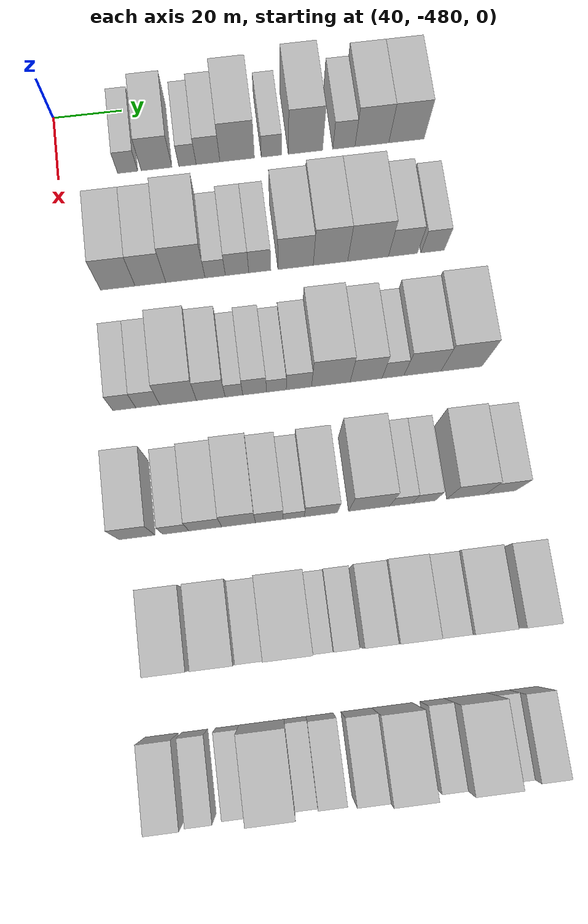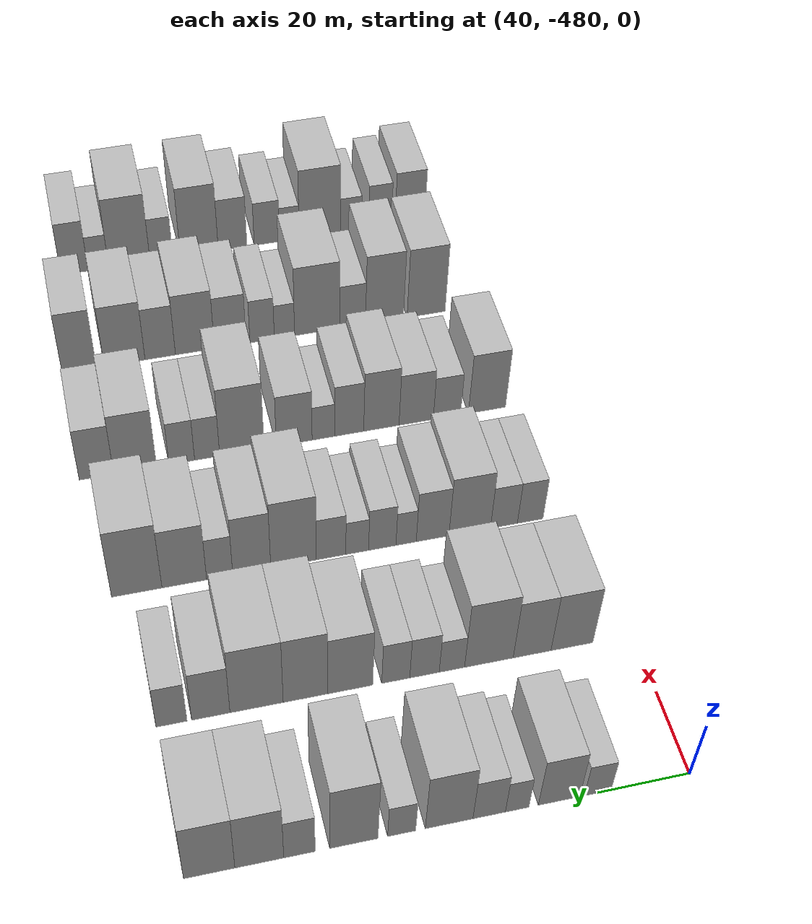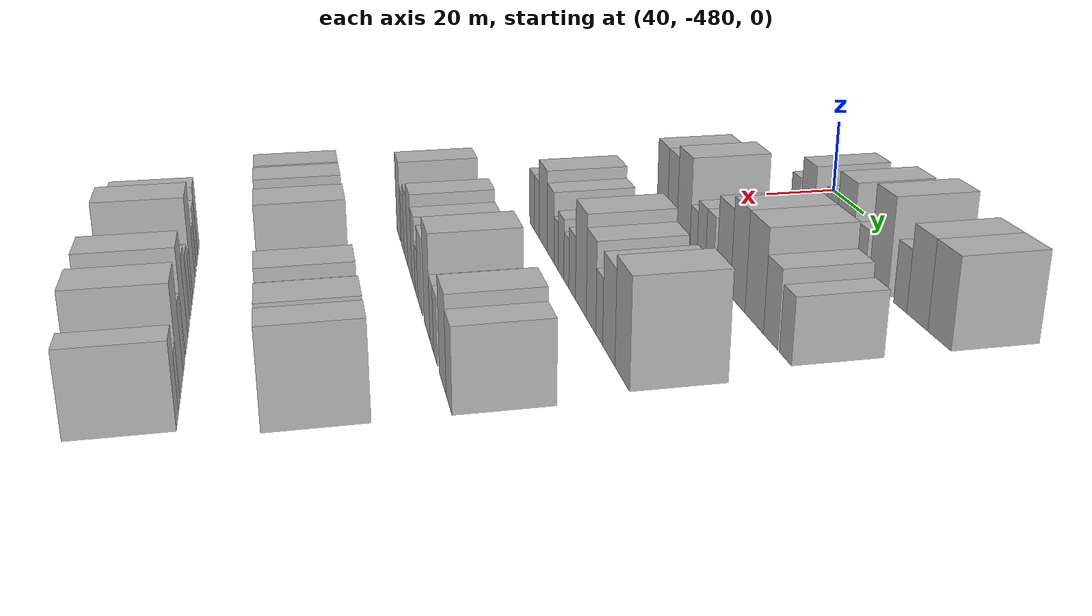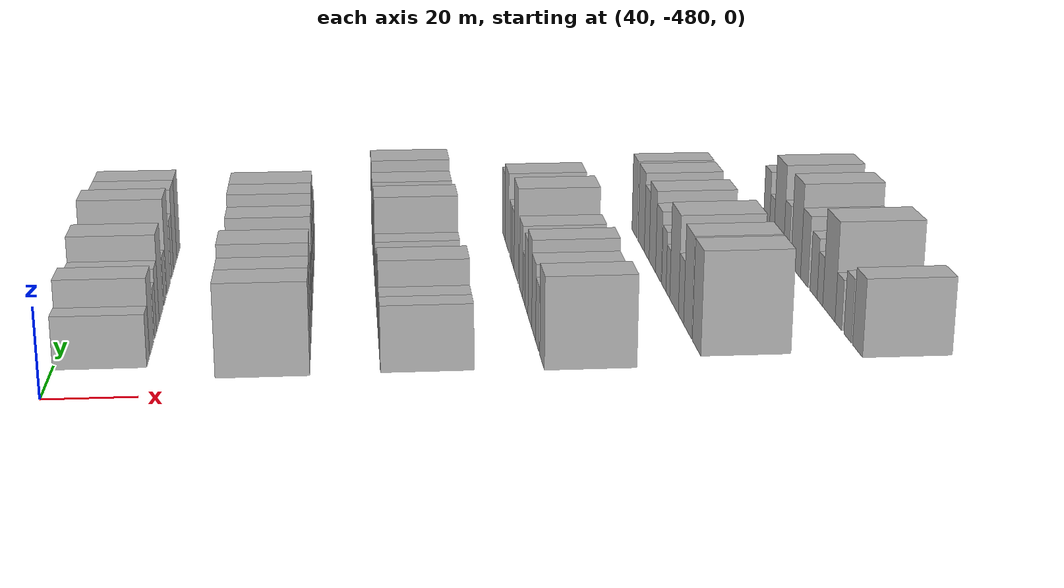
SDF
<sdf version="1.6">
 <world name="default">
  <model name="building_11">
   <static>1</static>
   <pose>50.0000 -459.8675 0 0.000000 0.000000 0.000000</pose>
   <link name="link">
    <pose>0 0 6.00 0 0 0</pose>
    <collision name="collision"><geometry><box><size>20.0000 5.8221 12.0000</size></box></geometry></collision>
    <visual name="visual">
     <cast_shadows>0</cast_shadows>
     <geometry><box><size>20.0000 5.8221 12.0000</size></box></geometry>
     <material>
      <script>
       <uri>model://HANNAS_wall/materials/scripts</uri>
       <uri>model://HANNAS_wall/materials/textures</uri>
       <name>vrc/HANNAS_wall</name>
      </script>
     </material>
    </visual>
   </link>
  </model>
  <model name="building_12">
   <static>1</static>
   <pose>50.0000 -451.4978 0 0.000000 0.000000 0.000000</pose>
   <link name="link">
    <pose>0 0 9.00 0 0 0</pose>
    <collision name="collision"><geometry><box><size>20.0000 8.9171 18.0000</size></box></geometry></collision>
    <visual name="visual">
     <cast_shadows>0</cast_shadows>
     <geometry><box><size>20.0000 8.9171 18.0000</size></box></geometry>
     <material>
      <script>
       <uri>model://HANNAS_wall/materials/scripts</uri>
       <uri>model://HANNAS_wall/materials/textures</uri>
       <name>vrc/HANNAS_wall</name>
      </script>
     </material>
    </visual>
   </link>
  </model>
  <model name="building_13">
   <static>1</static>
   <pose>50.0000 -442.5246 0 0.000000 0.000000 0.000000</pose>
   <link name="link">
    <pose>0 0 6.00 0 0 0</pose>
    <collision name="collision"><geometry><box><size>20.0000 5.0293 12.0000</size></box></geometry></collision>
    <visual name="visual">
     <cast_shadows>0</cast_shadows>
     <geometry><box><size>20.0000 5.0293 12.0000</size></box></geometry>
     <material>
      <script>
       <uri>model://HANNAS_wall/materials/scripts</uri>
       <uri>model://HANNAS_wall/materials/textures</uri>
       <name>vrc/HANNAS_wall</name>
      </script>
     </material>
    </visual>
   </link>
  </model>
  <model name="building_14">
   <static>1</static>
   <pose>50.0000 -436.5586 0 0.000000 0.000000 0.000000</pose>
   <link name="link">
    <pose>0 0 7.50 0 0 0</pose>
    <collision name="collision"><geometry><box><size>20.0000 6.9027 15.0000</size></box></geometry></collision>
    <visual name="visual">
     <cast_shadows>0</cast_shadows>
     <geometry><box><size>20.0000 6.9027 15.0000</size></box></geometry>
     <material>
      <script>
       <uri>model://HANNAS_wall/materials/scripts</uri>
       <uri>model://HANNAS_wall/materials/textures</uri>
       <name>vrc/HANNAS_wall</name>
      </script>
     </material>
    </visual>
   </link>
  </model>
  <model name="building_15">
   <static>1</static>
   <pose>50.0000 -428.0782 0 0.000000 0.000000 0.000000</pose>
   <link name="link">
    <pose>0 0 10.50 0 0 0</pose>
    <collision name="collision"><geometry><box><size>20.0000 10.0581 21.0000</size></box></geometry></collision>
    <visual name="visual">
     <cast_shadows>0</cast_shadows>
     <geometry><box><size>20.0000 10.0581 21.0000</size></box></geometry>
     <material>
      <script>
       <uri>model://HANNAS_wall/materials/scripts</uri>
       <uri>model://HANNAS_wall/materials/textures</uri>
       <name>vrc/HANNAS_wall</name>
      </script>
     </material>
    </visual>
   </link>
  </model>
  <model name="building_16">
   <static>1</static>
   <pose>50.0000 -418.1078 0 0.000000 0.000000 0.000000</pose>
   <link name="link">
    <pose>0 0 6.00 0 0 0</pose>
    <collision name="collision"><geometry><box><size>20.0000 5.8827 12.0000</size></box></geometry></collision>
    <visual name="visual">
     <cast_shadows>0</cast_shadows>
     <geometry><box><size>20.0000 5.8827 12.0000</size></box></geometry>
     <material>
      <script>
       <uri>model://HANNAS_wall/materials/scripts</uri>
       <uri>model://HANNAS_wall/materials/textures</uri>
       <name>vrc/HANNAS_wall</name>
      </script>
     </material>
    </visual>
   </link>
  </model>
  <model name="building_17">
   <static>1</static>
   <pose>50.0000 -408.1491 0 0.000000 0.000000 0.000000</pose>
   <link name="link">
    <pose>0 0 12.00 0 0 0</pose>
    <collision name="collision"><geometry><box><size>20.0000 10.0346 24.0000</size></box></geometry></collision>
    <visual name="visual">
     <cast_shadows>0</cast_shadows>
     <geometry><box><size>20.0000 10.0346 24.0000</size></box></geometry>
     <material>
      <script>
       <uri>model://HANNAS_wall/materials/scripts</uri>
       <uri>model://HANNAS_wall/materials/textures</uri>
       <name>vrc/HANNAS_wall</name>
      </script>
     </material>
    </visual>
   </link>
  </model>
  <model name="building_18">
   <static>1</static>
   <pose>50.0000 -396.9003 0 0.000000 0.000000 0.000000</pose>
   <link name="link">
    <pose>0 0 7.50 0 0 0</pose>
    <collision name="collision"><geometry><box><size>20.0000 6.4631 15.0000</size></box></geometry></collision>
    <visual name="visual">
     <cast_shadows>0</cast_shadows>
     <geometry><box><size>20.0000 6.4631 15.0000</size></box></geometry>
     <material>
      <script>
       <uri>model://HANNAS_wall/materials/scripts</uri>
       <uri>model://HANNAS_wall/materials/textures</uri>
       <name>vrc/HANNAS_wall</name>
      </script>
     </material>
    </visual>
   </link>
  </model>
  <model name="building_19">
   <static>1</static>
   <pose>50.0000 -388.6890 0 0.000000 0.000000 0.000000</pose>
   <link name="link">
    <pose>0 0 10.50 0 0 0</pose>
    <collision name="collision"><geometry><box><size>20.0000 9.9597 21.0000</size></box></geometry></collision>
    <visual name="visual">
     <cast_shadows>0</cast_shadows>
     <geometry><box><size>20.0000 9.9597 21.0000</size></box></geometry>
     <material>
      <script>
       <uri>model://HANNAS_wall/materials/scripts</uri>
       <uri>model://HANNAS_wall/materials/textures</uri>
       <name>vrc/HANNAS_wall</name>
      </script>
     </material>
    </visual>
   </link>
  </model>
  <model name="building_20">
   <static>1</static>
   <pose>50.0000 -378.5074 0 0.000000 0.000000 0.000000</pose>
   <link name="link">
    <pose>0 0 10.50 0 0 0</pose>
    <collision name="collision"><geometry><box><size>20.0000 10.4034 21.0000</size></box></geometry></collision>
    <visual name="visual">
     <cast_shadows>0</cast_shadows>
     <geometry><box><size>20.0000 10.4034 21.0000</size></box></geometry>
     <material>
      <script>
       <uri>model://HANNAS_wall/materials/scripts</uri>
       <uri>model://HANNAS_wall/materials/textures</uri>
       <name>vrc/HANNAS_wall</name>
      </script>
     </material>
    </visual>
   </link>
  </model>
  <model name="building_140">
   <static>1</static>
   <pose>85.0000 -465.6305 0 0.000000 0.000000 0.000000</pose>
   <link name="link">
    <pose>0 0 10.50 0 0 0</pose>
    <collision name="collision"><geometry><box><size>20.0000 9.6825 21.0000</size></box></geometry></collision>
    <visual name="visual">
     <cast_shadows>0</cast_shadows>
     <geometry><box><size>20.0000 9.6825 21.0000</size></box></geometry>
     <material>
      <script>
       <uri>model://HANNAS_wall/materials/scripts</uri>
       <uri>model://HANNAS_wall/materials/textures</uri>
       <name>vrc/HANNAS_wall</name>
      </script>
     </material>
    </visual>
   </link>
  </model>
  <model name="building_141">
   <static>1</static>
   <pose>85.0000 -456.4666 0 0.000000 0.000000 0.000000</pose>
   <link name="link">
    <pose>0 0 10.50 0 0 0</pose>
    <collision name="collision"><geometry><box><size>20.0000 8.6454 21.0000</size></box></geometry></collision>
    <visual name="visual">
     <cast_shadows>0</cast_shadows>
     <geometry><box><size>20.0000 8.6454 21.0000</size></box></geometry>
     <material>
      <script>
       <uri>model://HANNAS_wall/materials/scripts</uri>
       <uri>model://HANNAS_wall/materials/textures</uri>
       <name>vrc/HANNAS_wall</name>
      </script>
     </material>
    </visual>
   </link>
  </model>
  <model name="building_142">
   <static>1</static>
   <pose>85.0000 -446.6195 0 0.000000 0.000000 0.000000</pose>
   <link name="link">
    <pose>0 0 12.00 0 0 0</pose>
    <collision name="collision"><geometry><box><size>20.0000 11.0488 24.0000</size></box></geometry></collision>
    <visual name="visual">
     <cast_shadows>0</cast_shadows>
     <geometry><box><size>20.0000 11.0488 24.0000</size></box></geometry>
     <material>
      <script>
       <uri>model://HANNAS_wall/materials/scripts</uri>
       <uri>model://HANNAS_wall/materials/textures</uri>
       <name>vrc/HANNAS_wall</name>
      </script>
     </material>
    </visual>
   </link>
  </model>
  <model name="building_143">
   <static>1</static>
   <pose>85.0000 -438.2295 0 0.000000 0.000000 0.000000</pose>
   <link name="link">
    <pose>0 0 6.00 0 0 0</pose>
    <collision name="collision"><geometry><box><size>20.0000 5.7313 12.0000</size></box></geometry></collision>
    <visual name="visual">
     <cast_shadows>0</cast_shadows>
     <geometry><box><size>20.0000 5.7313 12.0000</size></box></geometry>
     <material>
      <script>
       <uri>model://HANNAS_wall/materials/scripts</uri>
       <uri>model://HANNAS_wall/materials/textures</uri>
       <name>vrc/HANNAS_wall</name>
      </script>
     </material>
    </visual>
   </link>
  </model>
  <model name="building_144">
   <static>1</static>
   <pose>85.0000 -432.0534 0 0.000000 0.000000 0.000000</pose>
   <link name="link">
    <pose>0 0 7.50 0 0 0</pose>
    <collision name="collision"><geometry><box><size>20.0000 6.6209 15.0000</size></box></geometry></collision>
    <visual name="visual">
     <cast_shadows>0</cast_shadows>
     <geometry><box><size>20.0000 6.6209 15.0000</size></box></geometry>
     <material>
      <script>
       <uri>model://HANNAS_wall/materials/scripts</uri>
       <uri>model://HANNAS_wall/materials/textures</uri>
       <name>vrc/HANNAS_wall</name>
      </script>
     </material>
    </visual>
   </link>
  </model>
  <model name="building_145">
   <static>1</static>
   <pose>85.0000 -425.6092 0 0.000000 0.000000 0.000000</pose>
   <link name="link">
    <pose>0 0 7.50 0 0 0</pose>
    <collision name="collision"><geometry><box><size>20.0000 6.2674 15.0000</size></box></geometry></collision>
    <visual name="visual">
     <cast_shadows>0</cast_shadows>
     <geometry><box><size>20.0000 6.2674 15.0000</size></box></geometry>
     <material>
      <script>
       <uri>model://HANNAS_wall/materials/scripts</uri>
       <uri>model://HANNAS_wall/materials/textures</uri>
       <name>vrc/HANNAS_wall</name>
      </script>
     </material>
    </visual>
   </link>
  </model>
  <model name="building_146">
   <static>1</static>
   <pose>85.0000 -415.4776 0 0.000000 0.000000 0.000000</pose>
   <link name="link">
    <pose>0 0 10.50 0 0 0</pose>
    <collision name="collision"><geometry><box><size>20.0000 9.9958 21.0000</size></box></geometry></collision>
    <visual name="visual">
     <cast_shadows>0</cast_shadows>
     <geometry><box><size>20.0000 9.9958 21.0000</size></box></geometry>
     <material>
      <script>
       <uri>model://HANNAS_wall/materials/scripts</uri>
       <uri>model://HANNAS_wall/materials/textures</uri>
       <name>vrc/HANNAS_wall</name>
      </script>
     </material>
    </visual>
   </link>
  </model>
  <model name="building_147">
   <static>1</static>
   <pose>85.0000 -405.5845 0 0.000000 0.000000 0.000000</pose>
   <link name="link">
    <pose>0 0 12.00 0 0 0</pose>
    <collision name="collision"><geometry><box><size>20.0000 9.7904 24.0000</size></box></geometry></collision>
    <visual name="visual">
     <cast_shadows>0</cast_shadows>
     <geometry><box><size>20.0000 9.7904 24.0000</size></box></geometry>
     <material>
      <script>
       <uri>model://HANNAS_wall/materials/scripts</uri>
       <uri>model://HANNAS_wall/materials/textures</uri>
       <name>vrc/HANNAS_wall</name>
      </script>
     </material>
    </visual>
   </link>
  </model>
  <model name="building_148">
   <static>1</static>
   <pose>85.0000 -394.8830 0 0.000000 0.000000 0.000000</pose>
   <link name="link">
    <pose>0 0 12.00 0 0 0</pose>
    <collision name="collision"><geometry><box><size>20.0000 11.6125 24.0000</size></box></geometry></collision>
    <visual name="visual">
     <cast_shadows>0</cast_shadows>
     <geometry><box><size>20.0000 11.6125 24.0000</size></box></geometry>
     <material>
      <script>
       <uri>model://HANNAS_wall/materials/scripts</uri>
       <uri>model://HANNAS_wall/materials/textures</uri>
       <name>vrc/HANNAS_wall</name>
      </script>
     </material>
    </visual>
   </link>
  </model>
  <model name="building_149">
   <static>1</static>
   <pose>85.0000 -384.9332 0 0.000000 0.000000 0.000000</pose>
   <link name="link">
    <pose>0 0 9.00 0 0 0</pose>
    <collision name="collision"><geometry><box><size>20.0000 8.2871 18.0000</size></box></geometry></collision>
    <visual name="visual">
     <cast_shadows>0</cast_shadows>
     <geometry><box><size>20.0000 8.2871 18.0000</size></box></geometry>
     <material>
      <script>
       <uri>model://HANNAS_wall/materials/scripts</uri>
       <uri>model://HANNAS_wall/materials/textures</uri>
       <name>vrc/HANNAS_wall</name>
      </script>
     </material>
    </visual>
   </link>
  </model>
  <model name="building_150">
   <static>1</static>
   <pose>85.0000 -376.4461 0 0.000000 0.000000 0.000000</pose>
   <link name="link">
    <pose>0 0 7.50 0 0 0</pose>
    <collision name="collision"><geometry><box><size>20.0000 6.6871 15.0000</size></box></geometry></collision>
    <visual name="visual">
     <cast_shadows>0</cast_shadows>
     <geometry><box><size>20.0000 6.6871 15.0000</size></box></geometry>
     <material>
      <script>
       <uri>model://HANNAS_wall/materials/scripts</uri>
       <uri>model://HANNAS_wall/materials/textures</uri>
       <name>vrc/HANNAS_wall</name>
      </script>
     </material>
    </visual>
   </link>
  </model>
  <model name="building_265">
   <static>1</static>
   <pose>120.0000 -466.7702 0 0.000000 0.000000 0.000000</pose>
   <link name="link">
    <pose>0 0 7.50 0 0 0</pose>
    <collision name="collision"><geometry><box><size>20.0000 6.2425 15.0000</size></box></geometry></collision>
    <visual name="visual">
     <cast_shadows>0</cast_shadows>
     <geometry><box><size>20.0000 6.2425 15.0000</size></box></geometry>
     <material>
      <script>
       <uri>model://HANNAS_wall/materials/scripts</uri>
       <uri>model://HANNAS_wall/materials/textures</uri>
       <name>vrc/HANNAS_wall</name>
      </script>
     </material>
    </visual>
   </link>
  </model>
  <model name="building_266">
   <static>1</static>
   <pose>120.0000 -460.3742 0 0.000000 0.000000 0.000000</pose>
   <link name="link">
    <pose>0 0 7.50 0 0 0</pose>
    <collision name="collision"><geometry><box><size>20.0000 6.5494 15.0000</size></box></geometry></collision>
    <visual name="visual">
     <cast_shadows>0</cast_shadows>
     <geometry><box><size>20.0000 6.5494 15.0000</size></box></geometry>
     <material>
      <script>
       <uri>model://HANNAS_wall/materials/scripts</uri>
       <uri>model://HANNAS_wall/materials/textures</uri>
       <name>vrc/HANNAS_wall</name>
      </script>
     </material>
    </visual>
   </link>
  </model>
  <model name="building_267">
   <static>1</static>
   <pose>120.0000 -452.0875 0 0.000000 0.000000 0.000000</pose>
   <link name="link">
    <pose>0 0 10.50 0 0 0</pose>
    <collision name="collision"><geometry><box><size>20.0000 10.0241 21.0000</size></box></geometry></collision>
    <visual name="visual">
     <cast_shadows>0</cast_shadows>
     <geometry><box><size>20.0000 10.0241 21.0000</size></box></geometry>
     <material>
      <script>
       <uri>model://HANNAS_wall/materials/scripts</uri>
       <uri>model://HANNAS_wall/materials/textures</uri>
       <name>vrc/HANNAS_wall</name>
      </script>
     </material>
    </visual>
   </link>
  </model>
  <model name="building_268">
   <static>1</static>
   <pose>120.0000 -443.1605 0 0.000000 0.000000 0.000000</pose>
   <link name="link">
    <pose>0 0 9.00 0 0 0</pose>
    <collision name="collision"><geometry><box><size>20.0000 7.8300 18.0000</size></box></geometry></collision>
    <visual name="visual">
     <cast_shadows>0</cast_shadows>
     <geometry><box><size>20.0000 7.8300 18.0000</size></box></geometry>
     <material>
      <script>
       <uri>model://HANNAS_wall/materials/scripts</uri>
       <uri>model://HANNAS_wall/materials/textures</uri>
       <name>vrc/HANNAS_wall</name>
      </script>
     </material>
    </visual>
   </link>
  </model>
  <model name="building_269">
   <static>1</static>
   <pose>120.0000 -436.8303 0 0.000000 0.000000 0.000000</pose>
   <link name="link">
    <pose>0 0 6.00 0 0 0</pose>
    <collision name="collision"><geometry><box><size>20.0000 4.8303 12.0000</size></box></geometry></collision>
    <visual name="visual">
     <cast_shadows>0</cast_shadows>
     <geometry><box><size>20.0000 4.8303 12.0000</size></box></geometry>
     <material>
      <script>
       <uri>model://HANNAS_wall/materials/scripts</uri>
       <uri>model://HANNAS_wall/materials/textures</uri>
       <name>vrc/HANNAS_wall</name>
      </script>
     </material>
    </visual>
   </link>
  </model>
  <model name="building_270">
   <static>1</static>
   <pose>120.0000 -431.1570 0 0.000000 0.000000 0.000000</pose>
   <link name="link">
    <pose>0 0 7.50 0 0 0</pose>
    <collision name="collision"><geometry><box><size>20.0000 6.5164 15.0000</size></box></geometry></collision>
    <visual name="visual">
     <cast_shadows>0</cast_shadows>
     <geometry><box><size>20.0000 6.5164 15.0000</size></box></geometry>
     <material>
      <script>
       <uri>model://HANNAS_wall/materials/scripts</uri>
       <uri>model://HANNAS_wall/materials/textures</uri>
       <name>vrc/HANNAS_wall</name>
      </script>
     </material>
    </visual>
   </link>
  </model>
  <model name="building_271">
   <static>1</static>
   <pose>120.0000 -425.1960 0 0.000000 0.000000 0.000000</pose>
   <link name="link">
    <pose>0 0 6.00 0 0 0</pose>
    <collision name="collision"><geometry><box><size>20.0000 5.4055 12.0000</size></box></geometry></collision>
    <visual name="visual">
     <cast_shadows>0</cast_shadows>
     <geometry><box><size>20.0000 5.4055 12.0000</size></box></geometry>
     <material>
      <script>
       <uri>model://HANNAS_wall/materials/scripts</uri>
       <uri>model://HANNAS_wall/materials/textures</uri>
       <name>vrc/HANNAS_wall</name>
      </script>
     </material>
    </visual>
   </link>
  </model>
  <model name="building_272">
   <static>1</static>
   <pose>120.0000 -419.0298 0 0.000000 0.000000 0.000000</pose>
   <link name="link">
    <pose>0 0 7.50 0 0 0</pose>
    <collision name="collision"><geometry><box><size>20.0000 6.9268 15.0000</size></box></geometry></collision>
    <visual name="visual">
     <cast_shadows>0</cast_shadows>
     <geometry><box><size>20.0000 6.9268 15.0000</size></box></geometry>
     <material>
      <script>
       <uri>model://HANNAS_wall/materials/scripts</uri>
       <uri>model://HANNAS_wall/materials/textures</uri>
       <name>vrc/HANNAS_wall</name>
      </script>
     </material>
    </visual>
   </link>
  </model>
  <model name="building_273">
   <static>1</static>
   <pose>120.0000 -410.2424 0 0.000000 0.000000 0.000000</pose>
   <link name="link">
    <pose>0 0 12.00 0 0 0</pose>
    <collision name="collision"><geometry><box><size>20.0000 10.6480 24.0000</size></box></geometry></collision>
    <visual name="visual">
     <cast_shadows>0</cast_shadows>
     <geometry><box><size>20.0000 10.6480 24.0000</size></box></geometry>
     <material>
      <script>
       <uri>model://HANNAS_wall/materials/scripts</uri>
       <uri>model://HANNAS_wall/materials/textures</uri>
       <name>vrc/HANNAS_wall</name>
      </script>
     </material>
    </visual>
   </link>
  </model>
  <model name="building_274">
   <static>1</static>
   <pose>120.0000 -400.5018 0 0.000000 0.000000 0.000000</pose>
   <link name="link">
    <pose>0 0 10.50 0 0 0</pose>
    <collision name="collision"><geometry><box><size>20.0000 8.8331 21.0000</size></box></geometry></collision>
    <visual name="visual">
     <cast_shadows>0</cast_shadows>
     <geometry><box><size>20.0000 8.8331 21.0000</size></box></geometry>
     <material>
      <script>
       <uri>model://HANNAS_wall/materials/scripts</uri>
       <uri>model://HANNAS_wall/materials/textures</uri>
       <name>vrc/HANNAS_wall</name>
      </script>
     </material>
    </visual>
   </link>
  </model>
  <model name="building_275">
   <static>1</static>
   <pose>120.0000 -393.0716 0 0.000000 0.000000 0.000000</pose>
   <link name="link">
    <pose>0 0 7.50 0 0 0</pose>
    <collision name="collision"><geometry><box><size>20.0000 6.0275 15.0000</size></box></geometry></collision>
    <visual name="visual">
     <cast_shadows>0</cast_shadows>
     <geometry><box><size>20.0000 6.0275 15.0000</size></box></geometry>
     <material>
      <script>
       <uri>model://HANNAS_wall/materials/scripts</uri>
       <uri>model://HANNAS_wall/materials/textures</uri>
       <name>vrc/HANNAS_wall</name>
      </script>
     </material>
    </visual>
   </link>
  </model>
  <model name="building_276">
   <static>1</static>
   <pose>120.0000 -384.9297 0 0.000000 0.000000 0.000000</pose>
   <link name="link">
    <pose>0 0 10.50 0 0 0</pose>
    <collision name="collision"><geometry><box><size>20.0000 10.2563 21.0000</size></box></geometry></collision>
    <visual name="visual">
     <cast_shadows>0</cast_shadows>
     <geometry><box><size>20.0000 10.2563 21.0000</size></box></geometry>
     <material>
      <script>
       <uri>model://HANNAS_wall/materials/scripts</uri>
       <uri>model://HANNAS_wall/materials/textures</uri>
       <name>vrc/HANNAS_wall</name>
      </script>
     </material>
    </visual>
   </link>
  </model>
  <model name="building_277">
   <static>1</static>
   <pose>120.0000 -374.0569 0 0.000000 0.000000 0.000000</pose>
   <link name="link">
    <pose>0 0 12.00 0 0 0</pose>
    <collision name="collision"><geometry><box><size>20.0000 11.4893 24.0000</size></box></geometry></collision>
    <visual name="visual">
     <cast_shadows>0</cast_shadows>
     <geometry><box><size>20.0000 11.4893 24.0000</size></box></geometry>
     <material>
      <script>
       <uri>model://HANNAS_wall/materials/scripts</uri>
       <uri>model://HANNAS_wall/materials/textures</uri>
       <name>vrc/HANNAS_wall</name>
      </script>
     </material>
    </visual>
   </link>
  </model>
  <model name="building_393">
   <static>1</static>
   <pose>155.0000 -466.3498 0 0.000000 0.000000 0.000000</pose>
   <link name="link">
    <pose>0 0 10.50 0 0 0</pose>
    <collision name="collision"><geometry><box><size>20.0000 9.5255 21.0000</size></box></geometry></collision>
    <visual name="visual">
     <cast_shadows>0</cast_shadows>
     <geometry><box><size>20.0000 9.5255 21.0000</size></box></geometry>
     <material>
      <script>
       <uri>model://HANNAS_wall/materials/scripts</uri>
       <uri>model://HANNAS_wall/materials/textures</uri>
       <name>vrc/HANNAS_wall</name>
      </script>
     </material>
    </visual>
   </link>
  </model>
  <model name="building_394">
   <static>1</static>
   <pose>155.0000 -456.1063 0 0.000000 0.000000 0.000000</pose>
   <link name="link">
    <pose>0 0 7.50 0 0 0</pose>
    <collision name="collision"><geometry><box><size>20.0000 6.9615 15.0000</size></box></geometry></collision>
    <visual name="visual">
     <cast_shadows>0</cast_shadows>
     <geometry><box><size>20.0000 6.9615 15.0000</size></box></geometry>
     <material>
      <script>
       <uri>model://HANNAS_wall/materials/scripts</uri>
       <uri>model://HANNAS_wall/materials/textures</uri>
       <name>vrc/HANNAS_wall</name>
      </script>
     </material>
    </visual>
   </link>
  </model>
  <model name="building_395">
   <static>1</static>
   <pose>155.0000 -448.2783 0 0.000000 0.000000 0.000000</pose>
   <link name="link">
    <pose>0 0 9.00 0 0 0</pose>
    <collision name="collision"><geometry><box><size>20.0000 8.6946 18.0000</size></box></geometry></collision>
    <visual name="visual">
     <cast_shadows>0</cast_shadows>
     <geometry><box><size>20.0000 8.6946 18.0000</size></box></geometry>
     <material>
      <script>
       <uri>model://HANNAS_wall/materials/scripts</uri>
       <uri>model://HANNAS_wall/materials/textures</uri>
       <name>vrc/HANNAS_wall</name>
      </script>
     </material>
    </visual>
   </link>
  </model>
  <model name="building_396">
   <static>1</static>
   <pose>155.0000 -439.4755 0 0.000000 0.000000 0.000000</pose>
   <link name="link">
    <pose>0 0 10.50 0 0 0</pose>
    <collision name="collision"><geometry><box><size>20.0000 8.9109 21.0000</size></box></geometry></collision>
    <visual name="visual">
     <cast_shadows>0</cast_shadows>
     <geometry><box><size>20.0000 8.9109 21.0000</size></box></geometry>
     <material>
      <script>
       <uri>model://HANNAS_wall/materials/scripts</uri>
       <uri>model://HANNAS_wall/materials/textures</uri>
       <name>vrc/HANNAS_wall</name>
      </script>
     </material>
    </visual>
   </link>
  </model>
  <model name="building_397">
   <static>1</static>
   <pose>155.0000 -431.3617 0 0.000000 0.000000 0.000000</pose>
   <link name="link">
    <pose>0 0 9.00 0 0 0</pose>
    <collision name="collision"><geometry><box><size>20.0000 7.3169 18.0000</size></box></geometry></collision>
    <visual name="visual">
     <cast_shadows>0</cast_shadows>
     <geometry><box><size>20.0000 7.3169 18.0000</size></box></geometry>
     <material>
      <script>
       <uri>model://HANNAS_wall/materials/scripts</uri>
       <uri>model://HANNAS_wall/materials/textures</uri>
       <name>vrc/HANNAS_wall</name>
      </script>
     </material>
    </visual>
   </link>
  </model>
  <model name="building_398">
   <static>1</static>
   <pose>155.0000 -424.9140 0 0.000000 0.000000 0.000000</pose>
   <link name="link">
    <pose>0 0 6.00 0 0 0</pose>
    <collision name="collision"><geometry><box><size>20.0000 5.5784 12.0000</size></box></geometry></collision>
    <visual name="visual">
     <cast_shadows>0</cast_shadows>
     <geometry><box><size>20.0000 5.5784 12.0000</size></box></geometry>
     <material>
      <script>
       <uri>model://HANNAS_wall/materials/scripts</uri>
       <uri>model://HANNAS_wall/materials/textures</uri>
       <name>vrc/HANNAS_wall</name>
      </script>
     </material>
    </visual>
   </link>
  </model>
  <model name="building_399">
   <static>1</static>
   <pose>155.0000 -417.6778 0 0.000000 0.000000 0.000000</pose>
   <link name="link">
    <pose>0 0 9.00 0 0 0</pose>
    <collision name="collision"><geometry><box><size>20.0000 8.8939 18.0000</size></box></geometry></collision>
    <visual name="visual">
     <cast_shadows>0</cast_shadows>
     <geometry><box><size>20.0000 8.8939 18.0000</size></box></geometry>
     <material>
      <script>
       <uri>model://HANNAS_wall/materials/scripts</uri>
       <uri>model://HANNAS_wall/materials/textures</uri>
       <name>vrc/HANNAS_wall</name>
      </script>
     </material>
    </visual>
   </link>
  </model>
  <model name="building_400">
   <static>1</static>
   <pose>155.0000 -404.7617 0 0.000000 0.000000 0.000000</pose>
   <link name="link">
    <pose>0 0 12.00 0 0 0</pose>
    <collision name="collision"><geometry><box><size>20.0000 10.9384 24.0000</size></box></geometry></collision>
    <visual name="visual">
     <cast_shadows>0</cast_shadows>
     <geometry><box><size>20.0000 10.9384 24.0000</size></box></geometry>
     <material>
      <script>
       <uri>model://HANNAS_wall/materials/scripts</uri>
       <uri>model://HANNAS_wall/materials/textures</uri>
       <name>vrc/HANNAS_wall</name>
      </script>
     </material>
    </visual>
   </link>
  </model>
  <model name="building_401">
   <static>1</static>
   <pose>155.0000 -396.2303 0 0.000000 0.000000 0.000000</pose>
   <link name="link">
    <pose>0 0 7.50 0 0 0</pose>
    <collision name="collision"><geometry><box><size>20.0000 6.1244 15.0000</size></box></geometry></collision>
    <visual name="visual">
     <cast_shadows>0</cast_shadows>
     <geometry><box><size>20.0000 6.1244 15.0000</size></box></geometry>
     <material>
      <script>
       <uri>model://HANNAS_wall/materials/scripts</uri>
       <uri>model://HANNAS_wall/materials/textures</uri>
       <name>vrc/HANNAS_wall</name>
      </script>
     </material>
    </visual>
   </link>
  </model>
  <model name="building_402">
   <static>1</static>
   <pose>155.0000 -390.0404 0 0.000000 0.000000 0.000000</pose>
   <link name="link">
    <pose>0 0 7.50 0 0 0</pose>
    <collision name="collision"><geometry><box><size>20.0000 6.2554 15.0000</size></box></geometry></collision>
    <visual name="visual">
     <cast_shadows>0</cast_shadows>
     <geometry><box><size>20.0000 6.2554 15.0000</size></box></geometry>
     <material>
      <script>
       <uri>model://HANNAS_wall/materials/scripts</uri>
       <uri>model://HANNAS_wall/materials/textures</uri>
       <name>vrc/HANNAS_wall</name>
      </script>
     </material>
    </visual>
   </link>
  </model>
  <model name="building_403">
   <static>1</static>
   <pose>155.0000 -378.7324 0 0.000000 0.000000 0.000000</pose>
   <link name="link">
    <pose>0 0 10.50 0 0 0</pose>
    <collision name="collision"><geometry><box><size>20.0000 10.3606 21.0000</size></box></geometry></collision>
    <visual name="visual">
     <cast_shadows>0</cast_shadows>
     <geometry><box><size>20.0000 10.3606 21.0000</size></box></geometry>
     <material>
      <script>
       <uri>model://HANNAS_wall/materials/scripts</uri>
       <uri>model://HANNAS_wall/materials/textures</uri>
       <name>vrc/HANNAS_wall</name>
      </script>
     </material>
    </visual>
   </link>
  </model>
  <model name="building_404">
   <static>1</static>
   <pose>155.0000 -369.4158 0 0.000000 0.000000 0.000000</pose>
   <link name="link">
    <pose>0 0 9.00 0 0 0</pose>
    <collision name="collision"><geometry><box><size>20.0000 8.2726 18.0000</size></box></geometry></collision>
    <visual name="visual">
     <cast_shadows>0</cast_shadows>
     <geometry><box><size>20.0000 8.2726 18.0000</size></box></geometry>
     <material>
      <script>
       <uri>model://HANNAS_wall/materials/scripts</uri>
       <uri>model://HANNAS_wall/materials/textures</uri>
       <name>vrc/HANNAS_wall</name>
      </script>
     </material>
    </visual>
   </link>
  </model>
  <model name="building_524">
   <static>1</static>
   <pose>190.0000 -459.9893 0 0.000000 0.000000 0.000000</pose>
   <link name="link">
    <pose>0 0 12.00 0 0 0</pose>
    <collision name="collision"><geometry><box><size>20.0000 10.2062 24.0000</size></box></geometry></collision>
    <visual name="visual">
     <cast_shadows>0</cast_shadows>
     <geometry><box><size>20.0000 10.2062 24.0000</size></box></geometry>
     <material>
      <script>
       <uri>model://HANNAS_wall/materials/scripts</uri>
       <uri>model://HANNAS_wall/materials/textures</uri>
       <name>vrc/HANNAS_wall</name>
      </script>
     </material>
    </visual>
   </link>
  </model>
  <model name="building_525">
   <static>1</static>
   <pose>190.0000 -448.8344 0 0.000000 0.000000 0.000000</pose>
   <link name="link">
    <pose>0 0 12.00 0 0 0</pose>
    <collision name="collision"><geometry><box><size>20.0000 10.1035 24.0000</size></box></geometry></collision>
    <visual name="visual">
     <cast_shadows>0</cast_shadows>
     <geometry><box><size>20.0000 10.1035 24.0000</size></box></geometry>
     <material>
      <script>
       <uri>model://HANNAS_wall/materials/scripts</uri>
       <uri>model://HANNAS_wall/materials/textures</uri>
       <name>vrc/HANNAS_wall</name>
      </script>
     </material>
    </visual>
   </link>
  </model>
  <model name="building_526">
   <static>1</static>
   <pose>190.0000 -440.3369 0 0.000000 0.000000 0.000000</pose>
   <link name="link">
    <pose>0 0 7.50 0 0 0</pose>
    <collision name="collision"><geometry><box><size>20.0000 6.8916 15.0000</size></box></geometry></collision>
    <visual name="visual">
     <cast_shadows>0</cast_shadows>
     <geometry><box><size>20.0000 6.8916 15.0000</size></box></geometry>
     <material>
      <script>
       <uri>model://HANNAS_wall/materials/scripts</uri>
       <uri>model://HANNAS_wall/materials/textures</uri>
       <name>vrc/HANNAS_wall</name>
      </script>
     </material>
    </visual>
   </link>
  </model>
  <model name="building_527">
   <static>1</static>
   <pose>190.0000 -430.9636 0 0.000000 0.000000 0.000000</pose>
   <link name="link">
    <pose>0 0 12.00 0 0 0</pose>
    <collision name="collision"><geometry><box><size>20.0000 11.8550 24.0000</size></box></geometry></collision>
    <visual name="visual">
     <cast_shadows>0</cast_shadows>
     <geometry><box><size>20.0000 11.8550 24.0000</size></box></geometry>
     <material>
      <script>
       <uri>model://HANNAS_wall/materials/scripts</uri>
       <uri>model://HANNAS_wall/materials/textures</uri>
       <name>vrc/HANNAS_wall</name>
      </script>
     </material>
    </visual>
   </link>
  </model>
  <model name="building_528">
   <static>1</static>
   <pose>190.0000 -422.3914 0 0.000000 0.000000 0.000000</pose>
   <link name="link">
    <pose>0 0 6.00 0 0 0</pose>
    <collision name="collision"><geometry><box><size>20.0000 5.2893 12.0000</size></box></geometry></collision>
    <visual name="visual">
     <cast_shadows>0</cast_shadows>
     <geometry><box><size>20.0000 5.2893 12.0000</size></box></geometry>
     <material>
      <script>
       <uri>model://HANNAS_wall/materials/scripts</uri>
       <uri>model://HANNAS_wall/materials/textures</uri>
       <name>vrc/HANNAS_wall</name>
      </script>
     </material>
    </visual>
   </link>
  </model>
  <model name="building_529">
   <static>1</static>
   <pose>190.0000 -416.5580 0 0.000000 0.000000 0.000000</pose>
   <link name="link">
    <pose>0 0 7.50 0 0 0</pose>
    <collision name="collision"><geometry><box><size>20.0000 6.3776 15.0000</size></box></geometry></collision>
    <visual name="visual">
     <cast_shadows>0</cast_shadows>
     <geometry><box><size>20.0000 6.3776 15.0000</size></box></geometry>
     <material>
      <script>
       <uri>model://HANNAS_wall/materials/scripts</uri>
       <uri>model://HANNAS_wall/materials/textures</uri>
       <name>vrc/HANNAS_wall</name>
      </script>
     </material>
    </visual>
   </link>
  </model>
  <model name="building_530">
   <static>1</static>
   <pose>190.0000 -408.2614 0 0.000000 0.000000 0.000000</pose>
   <link name="link">
    <pose>0 0 9.00 0 0 0</pose>
    <collision name="collision"><geometry><box><size>20.0000 8.2156 18.0000</size></box></geometry></collision>
    <visual name="visual">
     <cast_shadows>0</cast_shadows>
     <geometry><box><size>20.0000 8.2156 18.0000</size></box></geometry>
     <material>
      <script>
       <uri>model://HANNAS_wall/materials/scripts</uri>
       <uri>model://HANNAS_wall/materials/textures</uri>
       <name>vrc/HANNAS_wall</name>
      </script>
     </material>
    </visual>
   </link>
  </model>
  <model name="building_531">
   <static>1</static>
   <pose>190.0000 -399.1271 0 0.000000 0.000000 0.000000</pose>
   <link name="link">
    <pose>0 0 10.50 0 0 0</pose>
    <collision name="collision"><geometry><box><size>20.0000 10.0529 21.0000</size></box></geometry></collision>
    <visual name="visual">
     <cast_shadows>0</cast_shadows>
     <geometry><box><size>20.0000 10.0529 21.0000</size></box></geometry>
     <material>
      <script>
       <uri>model://HANNAS_wall/materials/scripts</uri>
       <uri>model://HANNAS_wall/materials/textures</uri>
       <name>vrc/HANNAS_wall</name>
      </script>
     </material>
    </visual>
   </link>
  </model>
  <model name="building_532">
   <static>1</static>
   <pose>190.0000 -390.1946 0 0.000000 0.000000 0.000000</pose>
   <link name="link">
    <pose>0 0 9.00 0 0 0</pose>
    <collision name="collision"><geometry><box><size>20.0000 7.8122 18.0000</size></box></geometry></collision>
    <visual name="visual">
     <cast_shadows>0</cast_shadows>
     <geometry><box><size>20.0000 7.8122 18.0000</size></box></geometry>
     <material>
      <script>
       <uri>model://HANNAS_wall/materials/scripts</uri>
       <uri>model://HANNAS_wall/materials/textures</uri>
       <name>vrc/HANNAS_wall</name>
      </script>
     </material>
    </visual>
   </link>
  </model>
  <model name="building_533">
   <static>1</static>
   <pose>190.0000 -381.0797 0 0.000000 0.000000 0.000000</pose>
   <link name="link">
    <pose>0 0 10.50 0 0 0</pose>
    <collision name="collision"><geometry><box><size>20.0000 10.4175 21.0000</size></box></geometry></collision>
    <visual name="visual">
     <cast_shadows>0</cast_shadows>
     <geometry><box><size>20.0000 10.4175 21.0000</size></box></geometry>
     <material>
      <script>
       <uri>model://HANNAS_wall/materials/scripts</uri>
       <uri>model://HANNAS_wall/materials/textures</uri>
       <name>vrc/HANNAS_wall</name>
      </script>
     </material>
    </visual>
   </link>
  </model>
  <model name="building_534">
   <static>1</static>
   <pose>190.0000 -369.5349 0 0.000000 0.000000 0.000000</pose>
   <link name="link">
    <pose>0 0 10.50 0 0 0</pose>
    <collision name="collision"><geometry><box><size>20.0000 8.6721 21.0000</size></box></geometry></collision>
    <visual name="visual">
     <cast_shadows>0</cast_shadows>
     <geometry><box><size>20.0000 8.6721 21.0000</size></box></geometry>
     <material>
      <script>
       <uri>model://HANNAS_wall/materials/scripts</uri>
       <uri>model://HANNAS_wall/materials/textures</uri>
       <name>vrc/HANNAS_wall</name>
      </script>
     </material>
    </visual>
   </link>
  </model>
  <model name="building_648">
   <static>1</static>
   <pose>225.0000 -464.5912 0 0.000000 0.000000 0.000000</pose>
   <link name="link">
    <pose>0 0 9.00 0 0 0</pose>
    <collision name="collision"><geometry><box><size>20.0000 8.3573 18.0000</size></box></geometry></collision>
    <visual name="visual">
     <cast_shadows>0</cast_shadows>
     <geometry><box><size>20.0000 8.3573 18.0000</size></box></geometry>
     <material>
      <script>
       <uri>model://HANNAS_wall/materials/scripts</uri>
       <uri>model://HANNAS_wall/materials/textures</uri>
       <name>vrc/HANNAS_wall</name>
      </script>
     </material>
    </visual>
   </link>
  </model>
  <model name="building_649">
   <static>1</static>
   <pose>225.0000 -456.1941 0 0.000000 0.000000 0.000000</pose>
   <link name="link">
    <pose>0 0 7.50 0 0 0</pose>
    <collision name="collision"><geometry><box><size>20.0000 6.4368 15.0000</size></box></geometry></collision>
    <visual name="visual">
     <cast_shadows>0</cast_shadows>
     <geometry><box><size>20.0000 6.4368 15.0000</size></box></geometry>
     <material>
      <script>
       <uri>model://HANNAS_wall/materials/scripts</uri>
       <uri>model://HANNAS_wall/materials/textures</uri>
       <name>vrc/HANNAS_wall</name>
      </script>
     </material>
    </visual>
   </link>
  </model>
  <model name="building_650">
   <static>1</static>
   <pose>225.0000 -448.0107 0 0.000000 0.000000 0.000000</pose>
   <link name="link">
    <pose>0 0 6.00 0 0 0</pose>
    <collision name="collision"><geometry><box><size>20.0000 5.9300 12.0000</size></box></geometry></collision>
    <visual name="visual">
     <cast_shadows>0</cast_shadows>
     <geometry><box><size>20.0000 5.9300 12.0000</size></box></geometry>
     <material>
      <script>
       <uri>model://HANNAS_wall/materials/scripts</uri>
       <uri>model://HANNAS_wall/materials/textures</uri>
       <name>vrc/HANNAS_wall</name>
      </script>
     </material>
    </visual>
   </link>
  </model>
  <model name="building_651">
   <static>1</static>
   <pose>225.0000 -439.3120 0 0.000000 0.000000 0.000000</pose>
   <link name="link">
    <pose>0 0 12.00 0 0 0</pose>
    <collision name="collision"><geometry><box><size>20.0000 11.4674 24.0000</size></box></geometry></collision>
    <visual name="visual">
     <cast_shadows>0</cast_shadows>
     <geometry><box><size>20.0000 11.4674 24.0000</size></box></geometry>
     <material>
      <script>
       <uri>model://HANNAS_wall/materials/scripts</uri>
       <uri>model://HANNAS_wall/materials/textures</uri>
       <name>vrc/HANNAS_wall</name>
      </script>
     </material>
    </visual>
   </link>
  </model>
  <model name="building_652">
   <static>1</static>
   <pose>225.0000 -430.8682 0 0.000000 0.000000 0.000000</pose>
   <link name="link">
    <pose>0 0 6.00 0 0 0</pose>
    <collision name="collision"><geometry><box><size>20.0000 5.4203 12.0000</size></box></geometry></collision>
    <visual name="visual">
     <cast_shadows>0</cast_shadows>
     <geometry><box><size>20.0000 5.4203 12.0000</size></box></geometry>
     <material>
      <script>
       <uri>model://HANNAS_wall/materials/scripts</uri>
       <uri>model://HANNAS_wall/materials/textures</uri>
       <name>vrc/HANNAS_wall</name>
      </script>
     </material>
    </visual>
   </link>
  </model>
  <model name="building_653">
   <static>1</static>
   <pose>225.0000 -424.6814 0 0.000000 0.000000 0.000000</pose>
   <link name="link">
    <pose>0 0 7.50 0 0 0</pose>
    <collision name="collision"><geometry><box><size>20.0000 6.9534 15.0000</size></box></geometry></collision>
    <visual name="visual">
     <cast_shadows>0</cast_shadows>
     <geometry><box><size>20.0000 6.9534 15.0000</size></box></geometry>
     <material>
      <script>
       <uri>model://HANNAS_wall/materials/scripts</uri>
       <uri>model://HANNAS_wall/materials/textures</uri>
       <name>vrc/HANNAS_wall</name>
      </script>
     </material>
    </visual>
   </link>
  </model>
  <model name="building_654">
   <static>1</static>
   <pose>225.0000 -415.2802 0 0.000000 0.000000 0.000000</pose>
   <link name="link">
    <pose>0 0 9.00 0 0 0</pose>
    <collision name="collision"><geometry><box><size>20.0000 7.8490 18.0000</size></box></geometry></collision>
    <visual name="visual">
     <cast_shadows>0</cast_shadows>
     <geometry><box><size>20.0000 7.8490 18.0000</size></box></geometry>
     <material>
      <script>
       <uri>model://HANNAS_wall/materials/scripts</uri>
       <uri>model://HANNAS_wall/materials/textures</uri>
       <name>vrc/HANNAS_wall</name>
      </script>
     </material>
    </visual>
   </link>
  </model>
  <model name="building_655">
   <static>1</static>
   <pose>225.0000 -406.1804 0 0.000000 0.000000 0.000000</pose>
   <link name="link">
    <pose>0 0 12.00 0 0 0</pose>
    <collision name="collision"><geometry><box><size>20.0000 10.3505 24.0000</size></box></geometry></collision>
    <visual name="visual">
     <cast_shadows>0</cast_shadows>
     <geometry><box><size>20.0000 10.3505 24.0000</size></box></geometry>
     <material>
      <script>
       <uri>model://HANNAS_wall/materials/scripts</uri>
       <uri>model://HANNAS_wall/materials/textures</uri>
       <name>vrc/HANNAS_wall</name>
      </script>
     </material>
    </visual>
   </link>
  </model>
  <model name="building_656">
   <static>1</static>
   <pose>225.0000 -395.9068 0 0.000000 0.000000 0.000000</pose>
   <link name="link">
    <pose>0 0 7.50 0 0 0</pose>
    <collision name="collision"><geometry><box><size>20.0000 6.1966 15.0000</size></box></geometry></collision>
    <visual name="visual">
     <cast_shadows>0</cast_shadows>
     <geometry><box><size>20.0000 6.1966 15.0000</size></box></geometry>
     <material>
      <script>
       <uri>model://HANNAS_wall/materials/scripts</uri>
       <uri>model://HANNAS_wall/materials/textures</uri>
       <name>vrc/HANNAS_wall</name>
      </script>
     </material>
    </visual>
   </link>
  </model>
  <model name="building_657">
   <static>1</static>
   <pose>225.0000 -387.2364 0 0.000000 0.000000 0.000000</pose>
   <link name="link">
    <pose>0 0 12.00 0 0 0</pose>
    <collision name="collision"><geometry><box><size>20.0000 11.1443 24.0000</size></box></geometry></collision>
    <visual name="visual">
     <cast_shadows>0</cast_shadows>
     <geometry><box><size>20.0000 11.1443 24.0000</size></box></geometry>
     <material>
      <script>
       <uri>model://HANNAS_wall/materials/scripts</uri>
       <uri>model://HANNAS_wall/materials/textures</uri>
       <name>vrc/HANNAS_wall</name>
      </script>
     </material>
    </visual>
   </link>
  </model>
  <model name="building_658">
   <static>1</static>
   <pose>225.0000 -378.9235 0 0.000000 0.000000 0.000000</pose>
   <link name="link">
    <pose>0 0 6.00 0 0 0</pose>
    <collision name="collision"><geometry><box><size>20.0000 5.4814 12.0000</size></box></geometry></collision>
    <visual name="visual">
     <cast_shadows>0</cast_shadows>
     <geometry><box><size>20.0000 5.4814 12.0000</size></box></geometry>
     <material>
      <script>
       <uri>model://HANNAS_wall/materials/scripts</uri>
       <uri>model://HANNAS_wall/materials/textures</uri>
       <name>vrc/HANNAS_wall</name>
      </script>
     </material>
    </visual>
   </link>
  </model>
  <model name="building_659">
   <static>1</static>
   <pose>225.0000 -372.5466 0 0.000000 0.000000 0.000000</pose>
   <link name="link">
    <pose>0 0 9.00 0 0 0</pose>
    <collision name="collision"><geometry><box><size>20.0000 7.2726 18.0000</size></box></geometry></collision>
    <visual name="visual">
     <cast_shadows>0</cast_shadows>
     <geometry><box><size>20.0000 7.2726 18.0000</size></box></geometry>
     <material>
      <script>
       <uri>model://HANNAS_wall/materials/scripts</uri>
       <uri>model://HANNAS_wall/materials/textures</uri>
       <name>vrc/HANNAS_wall</name>
      </script>
     </material>
    </visual>
   </link>
  </model>
 </world>
</sdf>
